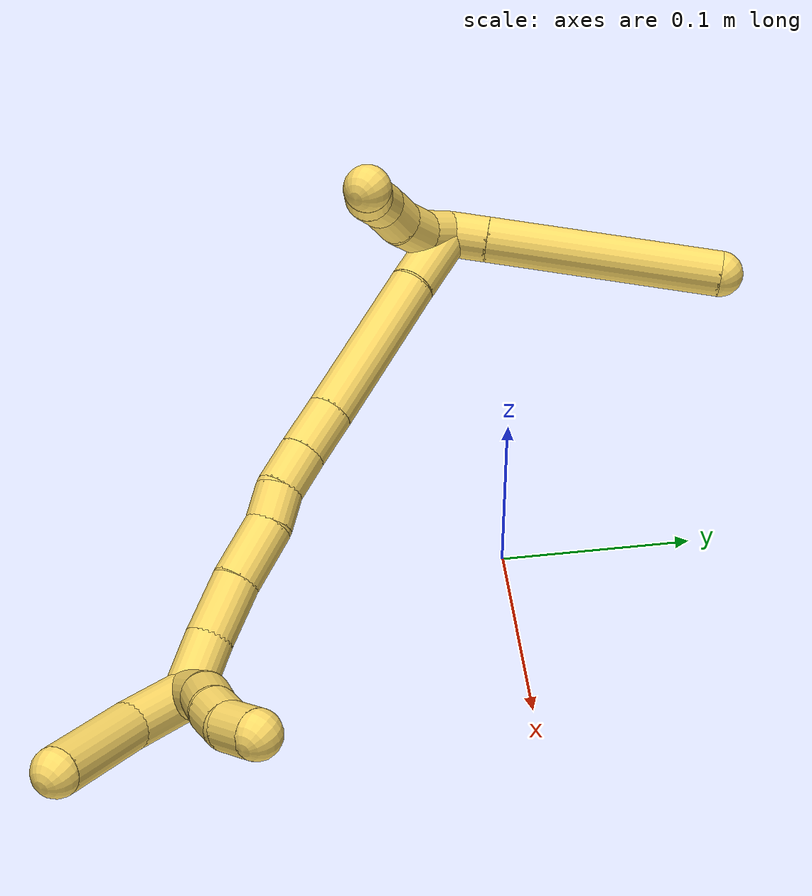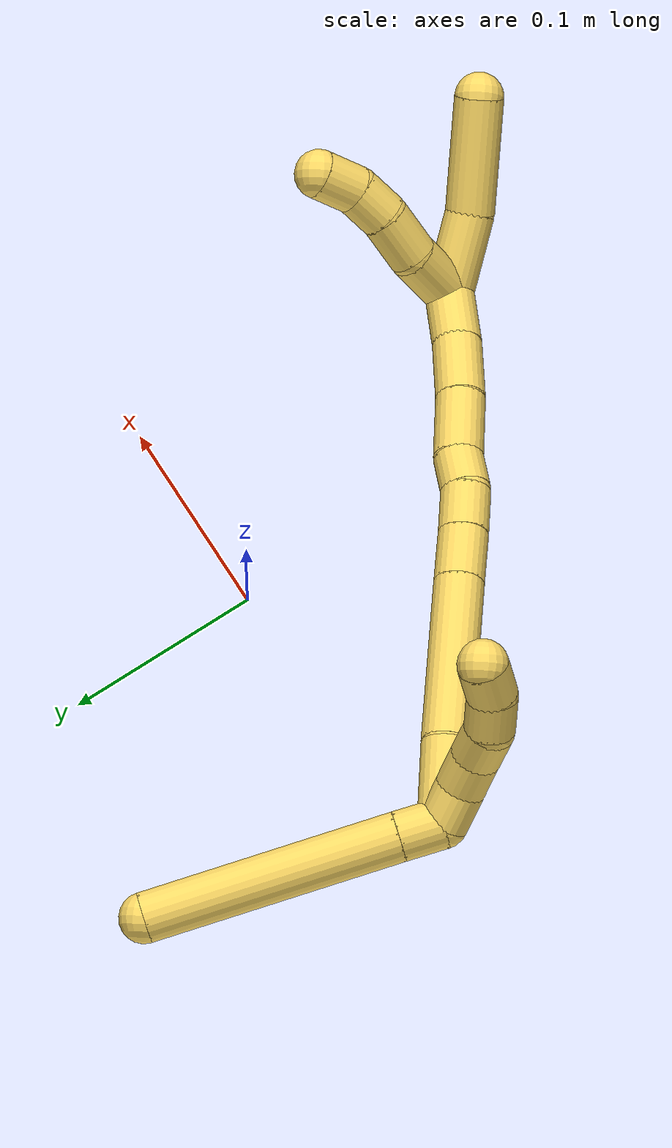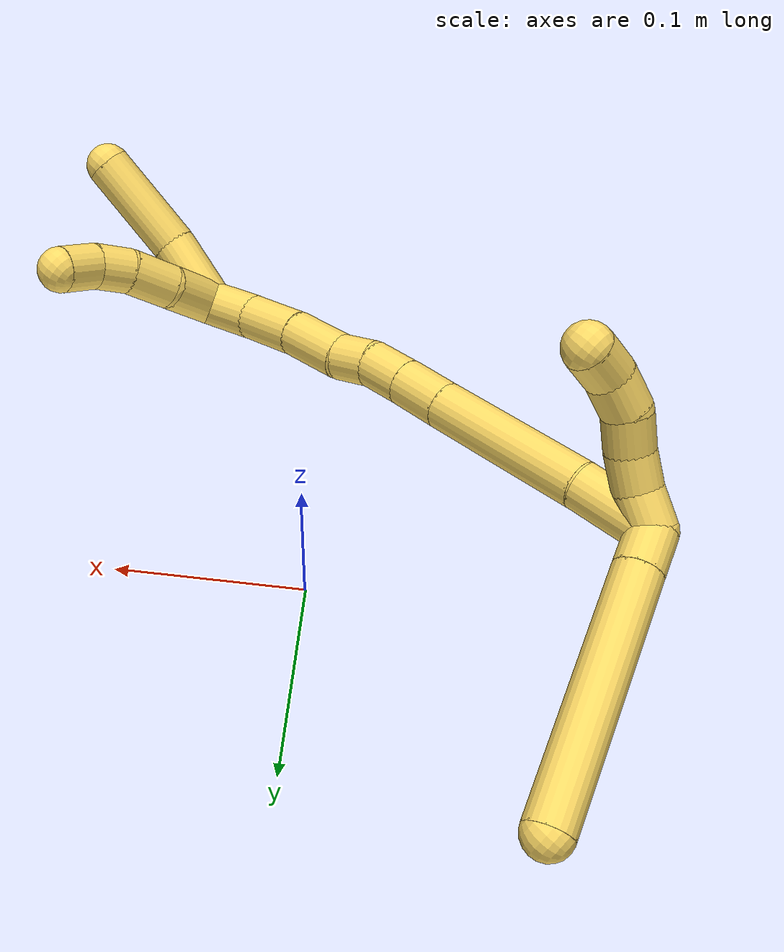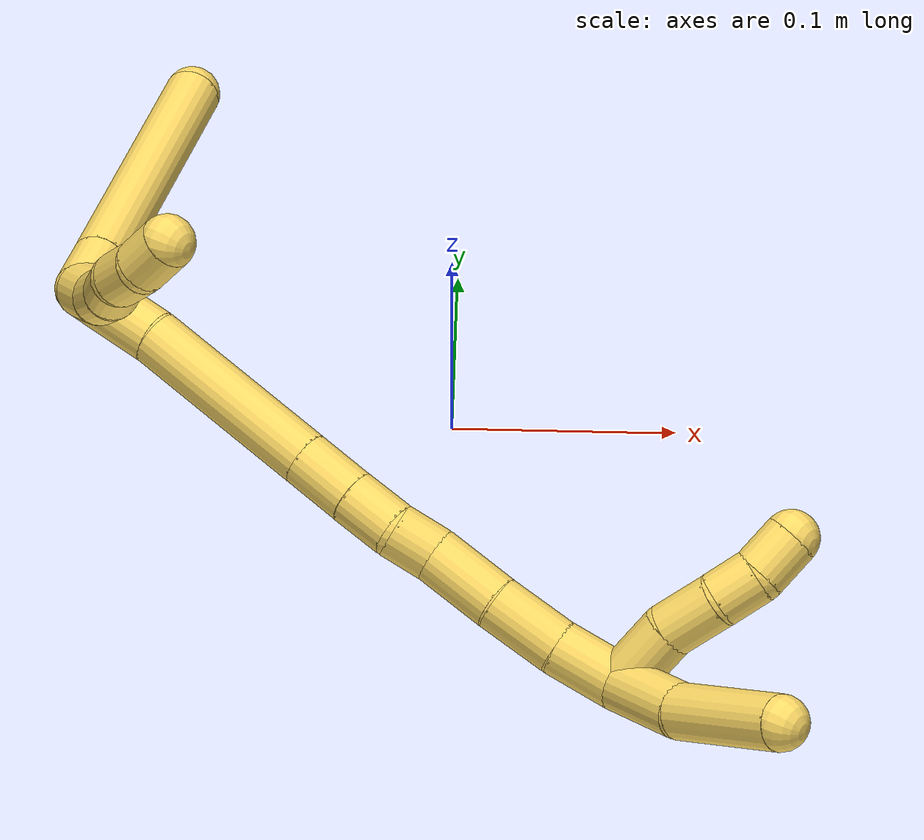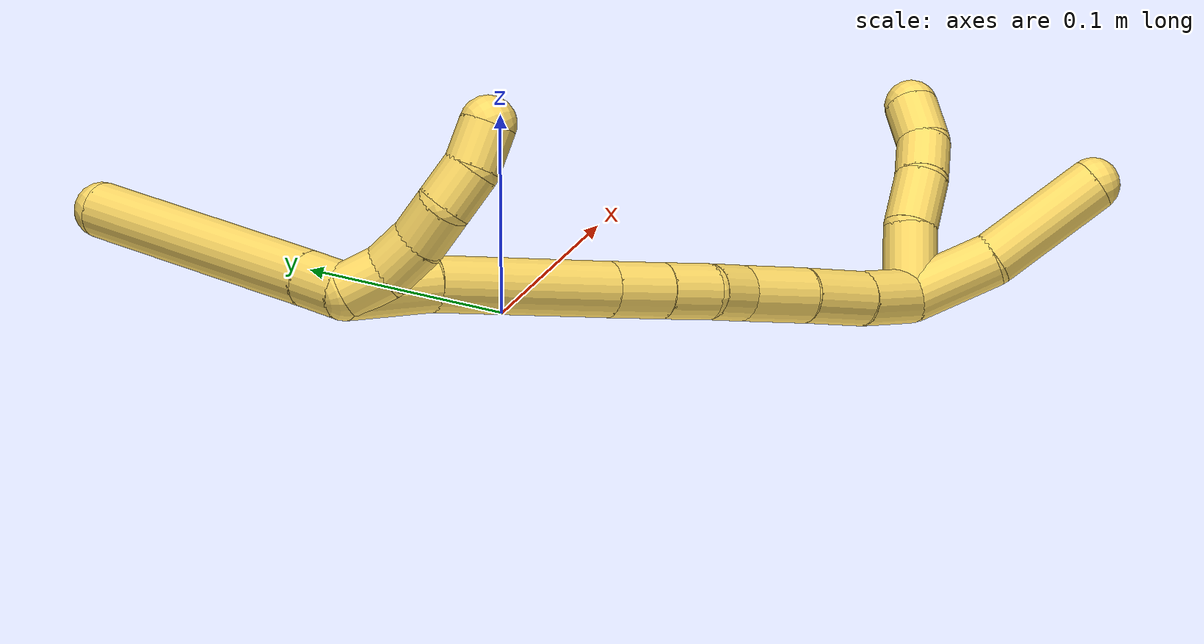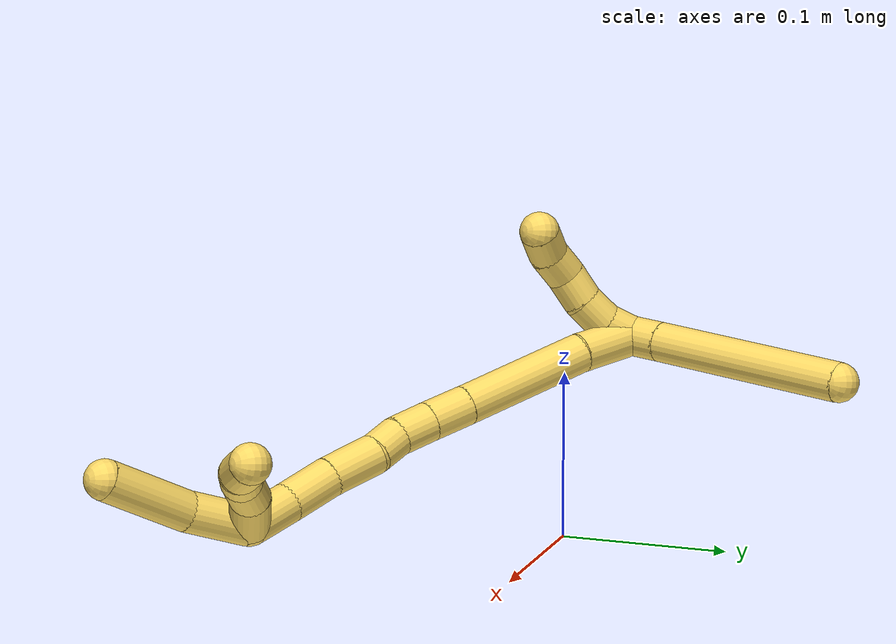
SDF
<sdf version="1.7">
 <world name="default">
  <model name="5">
   <static>0</static>
   <link name="5">
    <collision name="collision-cylinder-e_1_2_8">
     <pose>-0.000868 -0.010269 0.00385 1.2121 -0.078968 -0.054744</pose>
     <geometry><cylinder><radius>0.0125</radius><length>0.022002</length></cylinder></geometry>
     <surface>
      <friction><ode><mu>1.16</mu><mu2>1.16</mu2><slip1>0</slip1><slip2>0</slip2></ode></friction>
      <contact><ode><kp>1e+06</kp><kd>1</kd><max_vel>0</max_vel><min_depth>0.001</min_depth></ode></contact>
     </surface>
    </collision>
    <visual name="visual-cylinder-e_1_2_8">
     <pose>-0.000868 -0.010269 0.00385 1.2121 -0.078968 -0.054744</pose>
     <geometry><cylinder><radius>0.0125</radius><length>0.022002</length></cylinder></geometry>
     <material><ambient>1 0.858824 0.4 1</ambient></material>
    </visual>
    <collision name="collision-cylinder-e_2_8_6">
     <pose>-0.006152 -0.080071 0.030768 1.20112 -0.069067 -0.047318</pose>
     <geometry><cylinder><radius>0.0125</radius><length>0.127998</length></cylinder></geometry>
     <surface>
      <friction><ode><mu>1.16</mu><mu2>1.16</mu2><slip1>0</slip1><slip2>0</slip2></ode></friction>
      <contact><ode><kp>1e+06</kp><kd>1</kd><max_vel>0</max_vel><min_depth>0.001</min_depth></ode></contact>
     </surface>
    </collision>
    <visual name="visual-cylinder-e_2_8_6">
     <pose>-0.006152 -0.080071 0.030768 1.20112 -0.069067 -0.047318</pose>
     <geometry><cylinder><radius>0.0125</radius><length>0.127998</length></cylinder></geometry>
     <material><ambient>1 0.858824 0.4 1</ambient></material>
    </visual>
    <collision name="collision-cylinder-e_1_2_9">
     <pose>-0.003248 0.003998 -0.008571 -2.70511 -0.330752 1.29028</pose>
     <geometry><cylinder><radius>0.0125</radius><length>0.02</length></cylinder></geometry>
     <surface>
      <friction><ode><mu>1.16</mu><mu2>1.16</mu2><slip1>0</slip1><slip2>0</slip2></ode></friction>
      <contact><ode><kp>1e+06</kp><kd>1</kd><max_vel>0</max_vel><min_depth>0.001</min_depth></ode></contact>
     </surface>
    </collision>
    <visual name="visual-cylinder-e_1_2_9">
     <pose>-0.003248 0.003998 -0.008571 -2.70511 -0.330752 1.29028</pose>
     <geometry><cylinder><radius>0.0125</radius><length>0.02</length></cylinder></geometry>
     <material><ambient>1 0.858824 0.4 1</ambient></material>
    </visual>
    <collision name="collision-cylinder-e_2_9_10">
     <pose>-0.012425 0.011738 -0.024272 -2.65832 -0.634821 1.85434</pose>
     <geometry><cylinder><radius>0.0125</radius><length>0.02</length></cylinder></geometry>
     <surface>
      <friction><ode><mu>1.16</mu><mu2>1.16</mu2><slip1>0</slip1><slip2>0</slip2></ode></friction>
      <contact><ode><kp>1e+06</kp><kd>1</kd><max_vel>0</max_vel><min_depth>0.001</min_depth></ode></contact>
     </surface>
    </collision>
    <visual name="visual-cylinder-e_2_9_10">
     <pose>-0.012425 0.011738 -0.024272 -2.65832 -0.634821 1.85434</pose>
     <geometry><cylinder><radius>0.0125</radius><length>0.02</length></cylinder></geometry>
     <material><ambient>1 0.858824 0.4 1</ambient></material>
    </visual>
    <collision name="collision-cylinder-e_3_10_11">
     <pose>-0.02575 0.018969 -0.037159 -2.59679 -0.832241 2.0142</pose>
     <geometry><cylinder><radius>0.0125</radius><length>0.02</length></cylinder></geometry>
     <surface>
      <friction><ode><mu>1.16</mu><mu2>1.16</mu2><slip1>0</slip1><slip2>0</slip2></ode></friction>
      <contact><ode><kp>1e+06</kp><kd>1</kd><max_vel>0</max_vel><min_depth>0.001</min_depth></ode></contact>
     </surface>
    </collision>
    <visual name="visual-cylinder-e_3_10_11">
     <pose>-0.02575 0.018969 -0.037159 -2.59679 -0.832241 2.0142</pose>
     <geometry><cylinder><radius>0.0125</radius><length>0.02</length></cylinder></geometry>
     <material><ambient>1 0.858824 0.4 1</ambient></material>
    </visual>
    <collision name="collision-cylinder-e_4_11_12">
     <pose>-0.039702 0.023189 -0.050431 -3.04462 -0.715149 2.88331</pose>
     <geometry><cylinder><radius>0.0125</radius><length>0.02</length></cylinder></geometry>
     <surface>
      <friction><ode><mu>1.16</mu><mu2>1.16</mu2><slip1>0</slip1><slip2>0</slip2></ode></friction>
      <contact><ode><kp>1e+06</kp><kd>1</kd><max_vel>0</max_vel><min_depth>0.001</min_depth></ode></contact>
     </surface>
    </collision>
    <visual name="visual-cylinder-e_4_11_12">
     <pose>-0.039702 0.023189 -0.050431 -3.04462 -0.715149 2.88331</pose>
     <geometry><cylinder><radius>0.0125</radius><length>0.02</length></cylinder></geometry>
     <material><ambient>1 0.858824 0.4 1</ambient></material>
    </visual>
    <collision name="collision-cylinder-e_5_12_5">
     <pose>-0.053723 0.021871 -0.064277 2.82861 -0.842649 -2.46457</pose>
     <geometry><cylinder><radius>0.0125</radius><length>0.02</length></cylinder></geometry>
     <surface>
      <friction><ode><mu>1.16</mu><mu2>1.16</mu2><slip1>0</slip1><slip2>0</slip2></ode></friction>
      <contact><ode><kp>1e+06</kp><kd>1</kd><max_vel>0</max_vel><min_depth>0.001</min_depth></ode></contact>
     </surface>
    </collision>
    <visual name="visual-cylinder-e_5_12_5">
     <pose>-0.053723 0.021871 -0.064277 2.82861 -0.842649 -2.46457</pose>
     <geometry><cylinder><radius>0.0125</radius><length>0.02</length></cylinder></geometry>
     <material><ambient>1 0.858824 0.4 1</ambient></material>
    </visual>
    <collision name="collision-cylinder-e_1_2_13">
     <pose>0.005547 -0.000677 -0.019888 3.10756 0.271826 2.894</pose>
     <geometry><cylinder><radius>0.0125</radius><length>0.041317</length></cylinder></geometry>
     <surface>
      <friction><ode><mu>1.16</mu><mu2>1.16</mu2><slip1>0</slip1><slip2>0</slip2></ode></friction>
      <contact><ode><kp>1e+06</kp><kd>1</kd><max_vel>0</max_vel><min_depth>0.001</min_depth></ode></contact>
     </surface>
    </collision>
    <visual name="visual-cylinder-e_1_2_13">
     <pose>0.005547 -0.000677 -0.019888 3.10756 0.271826 2.894</pose>
     <geometry><cylinder><radius>0.0125</radius><length>0.041317</length></cylinder></geometry>
     <material><ambient>1 0.858824 0.4 1</ambient></material>
    </visual>
    <collision name="collision-cylinder-e_2_13_14">
     <pose>0.027646 -0.002041 -0.08065 3.12479 0.384733 3.05539</pose>
     <geometry><cylinder><radius>0.0125</radius><length>0.088206</length></cylinder></geometry>
     <surface>
      <friction><ode><mu>1.16</mu><mu2>1.16</mu2><slip1>0</slip1><slip2>0</slip2></ode></friction>
      <contact><ode><kp>1e+06</kp><kd>1</kd><max_vel>0</max_vel><min_depth>0.001</min_depth></ode></contact>
     </surface>
    </collision>
    <visual name="visual-cylinder-e_2_13_14">
     <pose>0.027646 -0.002041 -0.08065 3.12479 0.384733 3.05539</pose>
     <geometry><cylinder><radius>0.0125</radius><length>0.088206</length></cylinder></geometry>
     <material><ambient>1 0.858824 0.4 1</ambient></material>
    </visual>
    <collision name="collision-cylinder-e_3_14_15">
     <pose>0.049236 -0.002818 -0.134305 3.1345 0.375428 3.10426</pose>
     <geometry><cylinder><radius>0.0125</radius><length>0.027478</length></cylinder></geometry>
     <surface>
      <friction><ode><mu>1.16</mu><mu2>1.16</mu2><slip1>0</slip1><slip2>0</slip2></ode></friction>
      <contact><ode><kp>1e+06</kp><kd>1</kd><max_vel>0</max_vel><min_depth>0.001</min_depth></ode></contact>
     </surface>
    </collision>
    <visual name="visual-cylinder-e_3_14_15">
     <pose>0.049236 -0.002818 -0.134305 3.1345 0.375428 3.10426</pose>
     <geometry><cylinder><radius>0.0125</radius><length>0.027478</length></cylinder></geometry>
     <material><ambient>1 0.858824 0.4 1</ambient></material>
    </visual>
    <collision name="collision-cylinder-e_4_15_16">
     <pose>0.058716 -0.003302 -0.158267 3.10642 0.378013 2.95824</pose>
     <geometry><cylinder><radius>0.0125</radius><length>0.024073</length></cylinder></geometry>
     <surface>
      <friction><ode><mu>1.16</mu><mu2>1.16</mu2><slip1>0</slip1><slip2>0</slip2></ode></friction>
      <contact><ode><kp>1e+06</kp><kd>1</kd><max_vel>0</max_vel><min_depth>0.001</min_depth></ode></contact>
     </surface>
    </collision>
    <visual name="visual-cylinder-e_4_15_16">
     <pose>0.058716 -0.003302 -0.158267 3.10642 0.378013 2.95824</pose>
     <geometry><cylinder><radius>0.0125</radius><length>0.024073</length></cylinder></geometry>
     <material><ambient>1 0.858824 0.4 1</ambient></material>
    </visual>
    <collision name="collision-cylinder-e_5_16_17">
     <pose>0.06773 -0.006402 -0.17827 2.84398 0.459938 2.00245</pose>
     <geometry><cylinder><radius>0.0125</radius><length>0.0206</length></cylinder></geometry>
     <surface>
      <friction><ode><mu>1.16</mu><mu2>1.16</mu2><slip1>0</slip1><slip2>0</slip2></ode></friction>
      <contact><ode><kp>1e+06</kp><kd>1</kd><max_vel>0</max_vel><min_depth>0.001</min_depth></ode></contact>
     </surface>
    </collision>
    <visual name="visual-cylinder-e_5_16_17">
     <pose>0.06773 -0.006402 -0.17827 2.84398 0.459938 2.00245</pose>
     <geometry><cylinder><radius>0.0125</radius><length>0.0206</length></cylinder></geometry>
     <material><ambient>1 0.858824 0.4 1</ambient></material>
    </visual>
    <collision name="collision-cylinder-e_6_17_18">
     <pose>0.078991 -0.01003 -0.202894 3.08336 0.399853 2.85607</pose>
     <geometry><cylinder><radius>0.0125</radius><length>0.034363</length></cylinder></geometry>
     <surface>
      <friction><ode><mu>1.16</mu><mu2>1.16</mu2><slip1>0</slip1><slip2>0</slip2></ode></friction>
      <contact><ode><kp>1e+06</kp><kd>1</kd><max_vel>0</max_vel><min_depth>0.001</min_depth></ode></contact>
     </surface>
    </collision>
    <visual name="visual-cylinder-e_6_17_18">
     <pose>0.078991 -0.01003 -0.202894 3.08336 0.399853 2.85607</pose>
     <geometry><cylinder><radius>0.0125</radius><length>0.034363</length></cylinder></geometry>
     <material><ambient>1 0.858824 0.4 1</ambient></material>
    </visual>
    <collision name="collision-cylinder-e_7_18_19">
     <pose>0.092727 -0.013234 -0.233486 2.98847 0.440056 2.48073</pose>
     <geometry><cylinder><radius>0.0125</radius><length>0.033088</length></cylinder></geometry>
     <surface>
      <friction><ode><mu>1.16</mu><mu2>1.16</mu2><slip1>0</slip1><slip2>0</slip2></ode></friction>
      <contact><ode><kp>1e+06</kp><kd>1</kd><max_vel>0</max_vel><min_depth>0.001</min_depth></ode></contact>
     </surface>
    </collision>
    <visual name="visual-cylinder-e_7_18_19">
     <pose>0.092727 -0.013234 -0.233486 2.98847 0.440056 2.48073</pose>
     <geometry><cylinder><radius>0.0125</radius><length>0.033088</length></cylinder></geometry>
     <material><ambient>1 0.858824 0.4 1</ambient></material>
    </visual>
    <collision name="collision-cylinder-e_8_19_1">
     <pose>0.105351 -0.018756 -0.262304 2.91467 0.369566 2.04666</pose>
     <geometry><cylinder><radius>0.0125</radius><length>0.030875</length></cylinder></geometry>
     <surface>
      <friction><ode><mu>1.16</mu><mu2>1.16</mu2><slip1>0</slip1><slip2>0</slip2></ode></friction>
      <contact><ode><kp>1e+06</kp><kd>1</kd><max_vel>0</max_vel><min_depth>0.001</min_depth></ode></contact>
     </surface>
    </collision>
    <visual name="visual-cylinder-e_8_19_1">
     <pose>0.105351 -0.018756 -0.262304 2.91467 0.369566 2.04666</pose>
     <geometry><cylinder><radius>0.0125</radius><length>0.030875</length></cylinder></geometry>
     <material><ambient>1 0.858824 0.4 1</ambient></material>
    </visual>
    <collision name="collision-cylinder-e_1_1_20">
     <pose>0.107331 -0.017652 -0.296064 -2.92501 -0.176111 1.36409</pose>
     <geometry><cylinder><radius>0.0125</radius><length>0.041045</length></cylinder></geometry>
     <surface>
      <friction><ode><mu>1.16</mu><mu2>1.16</mu2><slip1>0</slip1><slip2>0</slip2></ode></friction>
      <contact><ode><kp>1e+06</kp><kd>1</kd><max_vel>0</max_vel><min_depth>0.001</min_depth></ode></contact>
     </surface>
    </collision>
    <visual name="visual-cylinder-e_1_1_20">
     <pose>0.107331 -0.017652 -0.296064 -2.92501 -0.176111 1.36409</pose>
     <geometry><cylinder><radius>0.0125</radius><length>0.041045</length></cylinder></geometry>
     <material><ambient>1 0.858824 0.4 1</ambient></material>
    </visual>
    <collision name="collision-cylinder-e_2_20_4">
     <pose>0.093994 -0.011854 -0.34358 -3.08922 -0.336824 2.83588</pose>
     <geometry><cylinder><radius>0.0125</radius><length>0.058955</length></cylinder></geometry>
     <surface>
      <friction><ode><mu>1.16</mu><mu2>1.16</mu2><slip1>0</slip1><slip2>0</slip2></ode></friction>
      <contact><ode><kp>1e+06</kp><kd>1</kd><max_vel>0</max_vel><min_depth>0.001</min_depth></ode></contact>
     </surface>
    </collision>
    <visual name="visual-cylinder-e_2_20_4">
     <pose>0.093994 -0.011854 -0.34358 -3.08922 -0.336824 2.83588</pose>
     <geometry><cylinder><radius>0.0125</radius><length>0.058955</length></cylinder></geometry>
     <material><ambient>1 0.858824 0.4 1</ambient></material>
    </visual>
    <collision name="collision-cylinder-e_1_1_21">
     <pose>0.099175 -0.030672 -0.283228 2.24238 -0.814565 -1.45895</pose>
     <geometry><cylinder><radius>0.0125</radius><length>0.032311</length></cylinder></geometry>
     <surface>
      <friction><ode><mu>1.16</mu><mu2>1.16</mu2><slip1>0</slip1><slip2>0</slip2></ode></friction>
      <contact><ode><kp>1e+06</kp><kd>1</kd><max_vel>0</max_vel><min_depth>0.001</min_depth></ode></contact>
     </surface>
    </collision>
    <visual name="visual-cylinder-e_1_1_21">
     <pose>0.099175 -0.030672 -0.283228 2.24238 -0.814565 -1.45895</pose>
     <geometry><cylinder><radius>0.0125</radius><length>0.032311</length></cylinder></geometry>
     <material><ambient>1 0.858824 0.4 1</ambient></material>
    </visual>
    <collision name="collision-cylinder-e_2_21_22">
     <pose>0.080123 -0.046266 -0.298306 2.43978 -0.598215 -1.40011</pose>
     <geometry><cylinder><radius>0.0125</radius><length>0.025925</length></cylinder></geometry>
     <surface>
      <friction><ode><mu>1.16</mu><mu2>1.16</mu2><slip1>0</slip1><slip2>0</slip2></ode></friction>
      <contact><ode><kp>1e+06</kp><kd>1</kd><max_vel>0</max_vel><min_depth>0.001</min_depth></ode></contact>
     </surface>
    </collision>
    <visual name="visual-cylinder-e_2_21_22">
     <pose>0.080123 -0.046266 -0.298306 2.43978 -0.598215 -1.40011</pose>
     <geometry><cylinder><radius>0.0125</radius><length>0.025925</length></cylinder></geometry>
     <material><ambient>1 0.858824 0.4 1</ambient></material>
    </visual>
    <collision name="collision-cylinder-e_3_22_23">
     <pose>0.068046 -0.060241 -0.311958 2.23015 -0.491082 -0.945277</pose>
     <geometry><cylinder><radius>0.0125</radius><length>0.020257</length></cylinder></geometry>
     <surface>
      <friction><ode><mu>1.16</mu><mu2>1.16</mu2><slip1>0</slip1><slip2>0</slip2></ode></friction>
      <contact><ode><kp>1e+06</kp><kd>1</kd><max_vel>0</max_vel><min_depth>0.001</min_depth></ode></contact>
     </surface>
    </collision>
    <visual name="visual-cylinder-e_3_22_23">
     <pose>0.068046 -0.060241 -0.311958 2.23015 -0.491082 -0.945277</pose>
     <geometry><cylinder><radius>0.0125</radius><length>0.020257</length></cylinder></geometry>
     <material><ambient>1 0.858824 0.4 1</ambient></material>
    </visual>
    <collision name="collision-cylinder-e_4_23_3">
     <pose>0.057575 -0.076038 -0.32005 1.86214 -0.558073 -0.735076</pose>
     <geometry><cylinder><radius>0.0125</radius><length>0.021507</length></cylinder></geometry>
     <surface>
      <friction><ode><mu>1.16</mu><mu2>1.16</mu2><slip1>0</slip1><slip2>0</slip2></ode></friction>
      <contact><ode><kp>1e+06</kp><kd>1</kd><max_vel>0</max_vel><min_depth>0.001</min_depth></ode></contact>
     </surface>
    </collision>
    <visual name="visual-cylinder-e_4_23_3">
     <pose>0.057575 -0.076038 -0.32005 1.86214 -0.558073 -0.735076</pose>
     <geometry><cylinder><radius>0.0125</radius><length>0.021507</length></cylinder></geometry>
     <material><ambient>1 0.858824 0.4 1</ambient></material>
    </visual>
    <collision name="collision-sphere-3">
     <pose>0.051881 -0.084775 -0.32267 0 -0 0</pose>
     <geometry><sphere><radius>0.0125</radius></sphere></geometry>
     <surface>
      <friction><ode><mu>1.16</mu><mu2>1.16</mu2><slip1>0</slip1><slip2>0</slip2></ode></friction>
      <contact><ode><kp>1e+06</kp><kd>1</kd><max_vel>0</max_vel><min_depth>0.001</min_depth></ode></contact>
     </surface>
    </collision>
    <visual name="visual-sphere-3">
     <pose>0.051881 -0.084775 -0.32267 0 -0 0</pose>
     <geometry><sphere><radius>0.0125</radius></sphere></geometry>
     <material><ambient>1 0.858824 0.4 1</ambient></material>
    </visual>
    <collision name="collision-sphere-23">
     <pose>0.06327 -0.0673 -0.31743 0 -0 0</pose>
     <geometry><sphere><radius>0.0125</radius></sphere></geometry>
     <surface>
      <friction><ode><mu>1.16</mu><mu2>1.16</mu2><slip1>0</slip1><slip2>0</slip2></ode></friction>
      <contact><ode><kp>1e+06</kp><kd>1</kd><max_vel>0</max_vel><min_depth>0.001</min_depth></ode></contact>
     </surface>
    </collision>
    <visual name="visual-sphere-23">
     <pose>0.06327 -0.0673 -0.31743 0 -0 0</pose>
     <geometry><sphere><radius>0.0125</radius></sphere></geometry>
     <material><ambient>1 0.858824 0.4 1</ambient></material>
    </visual>
    <collision name="collision-sphere-22">
     <pose>0.072823 -0.053181 -0.306486 0 -0 0</pose>
     <geometry><sphere><radius>0.0125</radius></sphere></geometry>
     <surface>
      <friction><ode><mu>1.16</mu><mu2>1.16</mu2><slip1>0</slip1><slip2>0</slip2></ode></friction>
      <contact><ode><kp>1e+06</kp><kd>1</kd><max_vel>0</max_vel><min_depth>0.001</min_depth></ode></contact>
     </surface>
    </collision>
    <visual name="visual-sphere-22">
     <pose>0.072823 -0.053181 -0.306486 0 -0 0</pose>
     <geometry><sphere><radius>0.0125</radius></sphere></geometry>
     <material><ambient>1 0.858824 0.4 1</ambient></material>
    </visual>
    <collision name="collision-sphere-21">
     <pose>0.087423 -0.03935 -0.290126 0 -0 0</pose>
     <geometry><sphere><radius>0.0125</radius></sphere></geometry>
     <surface>
      <friction><ode><mu>1.16</mu><mu2>1.16</mu2><slip1>0</slip1><slip2>0</slip2></ode></friction>
      <contact><ode><kp>1e+06</kp><kd>1</kd><max_vel>0</max_vel><min_depth>0.001</min_depth></ode></contact>
     </surface>
    </collision>
    <visual name="visual-sphere-21">
     <pose>0.087423 -0.03935 -0.290126 0 -0 0</pose>
     <geometry><sphere><radius>0.0125</radius></sphere></geometry>
     <material><ambient>1 0.858824 0.4 1</ambient></material>
    </visual>
    <collision name="collision-sphere-4">
     <pose>0.084252 -0.010397 -0.371363 0 -0 0</pose>
     <geometry><sphere><radius>0.0125</radius></sphere></geometry>
     <surface>
      <friction><ode><mu>1.16</mu><mu2>1.16</mu2><slip1>0</slip1><slip2>0</slip2></ode></friction>
      <contact><ode><kp>1e+06</kp><kd>1</kd><max_vel>0</max_vel><min_depth>0.001</min_depth></ode></contact>
     </surface>
    </collision>
    <visual name="visual-sphere-4">
     <pose>0.084252 -0.010397 -0.371363 0 -0 0</pose>
     <geometry><sphere><radius>0.0125</radius></sphere></geometry>
     <material><ambient>1 0.858824 0.4 1</ambient></material>
    </visual>
    <collision name="collision-sphere-20">
     <pose>0.103736 -0.01331 -0.315797 0 -0 0</pose>
     <geometry><sphere><radius>0.0125</radius></sphere></geometry>
     <surface>
      <friction><ode><mu>1.16</mu><mu2>1.16</mu2><slip1>0</slip1><slip2>0</slip2></ode></friction>
      <contact><ode><kp>1e+06</kp><kd>1</kd><max_vel>0</max_vel><min_depth>0.001</min_depth></ode></contact>
     </surface>
    </collision>
    <visual name="visual-sphere-20">
     <pose>0.103736 -0.01331 -0.315797 0 -0 0</pose>
     <geometry><sphere><radius>0.0125</radius></sphere></geometry>
     <material><ambient>1 0.858824 0.4 1</ambient></material>
    </visual>
    <collision name="collision-sphere-11">
     <pose>-0.033145 0.022458 -0.042917 0 -0 0</pose>
     <geometry><sphere><radius>0.0125</radius></sphere></geometry>
     <surface>
      <friction><ode><mu>1.16</mu><mu2>1.16</mu2><slip1>0</slip1><slip2>0</slip2></ode></friction>
      <contact><ode><kp>1e+06</kp><kd>1</kd><max_vel>0</max_vel><min_depth>0.001</min_depth></ode></contact>
     </surface>
    </collision>
    <visual name="visual-sphere-11">
     <pose>-0.033145 0.022458 -0.042917 0 -0 0</pose>
     <geometry><sphere><radius>0.0125</radius></sphere></geometry>
     <material><ambient>1 0.858824 0.4 1</ambient></material>
    </visual>
    <collision name="collision-sphere-10">
     <pose>-0.018356 0.01548 -0.031402 0 -0 0</pose>
     <geometry><sphere><radius>0.0125</radius></sphere></geometry>
     <surface>
      <friction><ode><mu>1.16</mu><mu2>1.16</mu2><slip1>0</slip1><slip2>0</slip2></ode></friction>
      <contact><ode><kp>1e+06</kp><kd>1</kd><max_vel>0</max_vel><min_depth>0.001</min_depth></ode></contact>
     </surface>
    </collision>
    <visual name="visual-sphere-10">
     <pose>-0.018356 0.01548 -0.031402 0 -0 0</pose>
     <geometry><sphere><radius>0.0125</radius></sphere></geometry>
     <material><ambient>1 0.858824 0.4 1</ambient></material>
    </visual>
    <collision name="collision-sphere-6">
     <pose>-0.010569 -0.139604 0.053837 0 -0 0</pose>
     <geometry><sphere><radius>0.0125</radius></sphere></geometry>
     <surface>
      <friction><ode><mu>1.16</mu><mu2>1.16</mu2><slip1>0</slip1><slip2>0</slip2></ode></friction>
      <contact><ode><kp>1e+06</kp><kd>1</kd><max_vel>0</max_vel><min_depth>0.001</min_depth></ode></contact>
     </surface>
    </collision>
    <visual name="visual-sphere-6">
     <pose>-0.010569 -0.139604 0.053837 0 -0 0</pose>
     <geometry><sphere><radius>0.0125</radius></sphere></geometry>
     <material><ambient>1 0.858824 0.4 1</ambient></material>
    </visual>
    <collision name="collision-sphere-9">
     <pose>-0.006495 0.007997 -0.017142 0 -0 0</pose>
     <geometry><sphere><radius>0.0125</radius></sphere></geometry>
     <surface>
      <friction><ode><mu>1.16</mu><mu2>1.16</mu2><slip1>0</slip1><slip2>0</slip2></ode></friction>
      <contact><ode><kp>1e+06</kp><kd>1</kd><max_vel>0</max_vel><min_depth>0.001</min_depth></ode></contact>
     </surface>
    </collision>
    <visual name="visual-sphere-9">
     <pose>-0.006495 0.007997 -0.017142 0 -0 0</pose>
     <geometry><sphere><radius>0.0125</radius></sphere></geometry>
     <material><ambient>1 0.858824 0.4 1</ambient></material>
    </visual>
    <collision name="collision-sphere-2">
     <geometry><sphere><radius>0.0125</radius></sphere></geometry>
     <surface>
      <friction><ode><mu>1.16</mu><mu2>1.16</mu2><slip1>0</slip1><slip2>0</slip2></ode></friction>
      <contact><ode><kp>1e+06</kp><kd>1</kd><max_vel>0</max_vel><min_depth>0.001</min_depth></ode></contact>
     </surface>
    </collision>
    <visual name="visual-sphere-2">
     <geometry><sphere><radius>0.0125</radius></sphere></geometry>
     <material><ambient>1 0.858824 0.4 1</ambient></material>
    </visual>
    <collision name="collision-sphere-19">
     <pose>0.099774 -0.015517 -0.248278 0 -0 0</pose>
     <geometry><sphere><radius>0.0125</radius></sphere></geometry>
     <surface>
      <friction><ode><mu>1.16</mu><mu2>1.16</mu2><slip1>0</slip1><slip2>0</slip2></ode></friction>
      <contact><ode><kp>1e+06</kp><kd>1</kd><max_vel>0</max_vel><min_depth>0.001</min_depth></ode></contact>
     </surface>
    </collision>
    <visual name="visual-sphere-19">
     <pose>0.099774 -0.015517 -0.248278 0 -0 0</pose>
     <geometry><sphere><radius>0.0125</radius></sphere></geometry>
     <material><ambient>1 0.858824 0.4 1</ambient></material>
    </visual>
    <collision name="collision-sphere-8">
     <pose>-0.001736 -0.020537 0.0077 0 -0 0</pose>
     <geometry><sphere><radius>0.0125</radius></sphere></geometry>
     <surface>
      <friction><ode><mu>1.16</mu><mu2>1.16</mu2><slip1>0</slip1><slip2>0</slip2></ode></friction>
      <contact><ode><kp>1e+06</kp><kd>1</kd><max_vel>0</max_vel><min_depth>0.001</min_depth></ode></contact>
     </surface>
    </collision>
    <visual name="visual-sphere-8">
     <pose>-0.001736 -0.020537 0.0077 0 -0 0</pose>
     <geometry><sphere><radius>0.0125</radius></sphere></geometry>
     <material><ambient>1 0.858824 0.4 1</ambient></material>
    </visual>
    <collision name="collision-sphere-12">
     <pose>-0.046259 0.02392 -0.057946 0 -0 0</pose>
     <geometry><sphere><radius>0.0125</radius></sphere></geometry>
     <surface>
      <friction><ode><mu>1.16</mu><mu2>1.16</mu2><slip1>0</slip1><slip2>0</slip2></ode></friction>
      <contact><ode><kp>1e+06</kp><kd>1</kd><max_vel>0</max_vel><min_depth>0.001</min_depth></ode></contact>
     </surface>
    </collision>
    <visual name="visual-sphere-12">
     <pose>-0.046259 0.02392 -0.057946 0 -0 0</pose>
     <geometry><sphere><radius>0.0125</radius></sphere></geometry>
     <material><ambient>1 0.858824 0.4 1</ambient></material>
    </visual>
    <collision name="collision-sphere-5">
     <pose>-0.061187 0.019822 -0.070609 0 -0 0</pose>
     <geometry><sphere><radius>0.0125</radius></sphere></geometry>
     <surface>
      <friction><ode><mu>1.16</mu><mu2>1.16</mu2><slip1>0</slip1><slip2>0</slip2></ode></friction>
      <contact><ode><kp>1e+06</kp><kd>1</kd><max_vel>0</max_vel><min_depth>0.001</min_depth></ode></contact>
     </surface>
    </collision>
    <visual name="visual-sphere-5">
     <pose>-0.061187 0.019822 -0.070609 0 -0 0</pose>
     <geometry><sphere><radius>0.0125</radius></sphere></geometry>
     <material><ambient>1 0.858824 0.4 1</ambient></material>
    </visual>
    <collision name="collision-sphere-13">
     <pose>0.011093 -0.001354 -0.039777 0 -0 0</pose>
     <geometry><sphere><radius>0.0125</radius></sphere></geometry>
     <surface>
      <friction><ode><mu>1.16</mu><mu2>1.16</mu2><slip1>0</slip1><slip2>0</slip2></ode></friction>
      <contact><ode><kp>1e+06</kp><kd>1</kd><max_vel>0</max_vel><min_depth>0.001</min_depth></ode></contact>
     </surface>
    </collision>
    <visual name="visual-sphere-13">
     <pose>0.011093 -0.001354 -0.039777 0 -0 0</pose>
     <geometry><sphere><radius>0.0125</radius></sphere></geometry>
     <material><ambient>1 0.858824 0.4 1</ambient></material>
    </visual>
    <collision name="collision-sphere-14">
     <pose>0.044198 -0.002728 -0.121523 0 -0 0</pose>
     <geometry><sphere><radius>0.0125</radius></sphere></geometry>
     <surface>
      <friction><ode><mu>1.16</mu><mu2>1.16</mu2><slip1>0</slip1><slip2>0</slip2></ode></friction>
      <contact><ode><kp>1e+06</kp><kd>1</kd><max_vel>0</max_vel><min_depth>0.001</min_depth></ode></contact>
     </surface>
    </collision>
    <visual name="visual-sphere-14">
     <pose>0.044198 -0.002728 -0.121523 0 -0 0</pose>
     <geometry><sphere><radius>0.0125</radius></sphere></geometry>
     <material><ambient>1 0.858824 0.4 1</ambient></material>
    </visual>
    <collision name="collision-sphere-15">
     <pose>0.054273 -0.002909 -0.147087 0 -0 0</pose>
     <geometry><sphere><radius>0.0125</radius></sphere></geometry>
     <surface>
      <friction><ode><mu>1.16</mu><mu2>1.16</mu2><slip1>0</slip1><slip2>0</slip2></ode></friction>
      <contact><ode><kp>1e+06</kp><kd>1</kd><max_vel>0</max_vel><min_depth>0.001</min_depth></ode></contact>
     </surface>
    </collision>
    <visual name="visual-sphere-15">
     <pose>0.054273 -0.002909 -0.147087 0 -0 0</pose>
     <geometry><sphere><radius>0.0125</radius></sphere></geometry>
     <material><ambient>1 0.858824 0.4 1</ambient></material>
    </visual>
    <collision name="collision-sphere-16">
     <pose>0.063158 -0.003696 -0.169446 0 -0 0</pose>
     <geometry><sphere><radius>0.0125</radius></sphere></geometry>
     <surface>
      <friction><ode><mu>1.16</mu><mu2>1.16</mu2><slip1>0</slip1><slip2>0</slip2></ode></friction>
      <contact><ode><kp>1e+06</kp><kd>1</kd><max_vel>0</max_vel><min_depth>0.001</min_depth></ode></contact>
     </surface>
    </collision>
    <visual name="visual-sphere-16">
     <pose>0.063158 -0.003696 -0.169446 0 -0 0</pose>
     <geometry><sphere><radius>0.0125</radius></sphere></geometry>
     <material><ambient>1 0.858824 0.4 1</ambient></material>
    </visual>
    <collision name="collision-sphere-17">
     <pose>0.072302 -0.009109 -0.187094 0 -0 0</pose>
     <geometry><sphere><radius>0.0125</radius></sphere></geometry>
     <surface>
      <friction><ode><mu>1.16</mu><mu2>1.16</mu2><slip1>0</slip1><slip2>0</slip2></ode></friction>
      <contact><ode><kp>1e+06</kp><kd>1</kd><max_vel>0</max_vel><min_depth>0.001</min_depth></ode></contact>
     </surface>
    </collision>
    <visual name="visual-sphere-17">
     <pose>0.072302 -0.009109 -0.187094 0 -0 0</pose>
     <geometry><sphere><radius>0.0125</radius></sphere></geometry>
     <material><ambient>1 0.858824 0.4 1</ambient></material>
    </visual>
    <collision name="collision-sphere-18">
     <pose>0.085679 -0.010951 -0.218693 0 -0 0</pose>
     <geometry><sphere><radius>0.0125</radius></sphere></geometry>
     <surface>
      <friction><ode><mu>1.16</mu><mu2>1.16</mu2><slip1>0</slip1><slip2>0</slip2></ode></friction>
      <contact><ode><kp>1e+06</kp><kd>1</kd><max_vel>0</max_vel><min_depth>0.001</min_depth></ode></contact>
     </surface>
    </collision>
    <visual name="visual-sphere-18">
     <pose>0.085679 -0.010951 -0.218693 0 -0 0</pose>
     <geometry><sphere><radius>0.0125</radius></sphere></geometry>
     <material><ambient>1 0.858824 0.4 1</ambient></material>
    </visual>
    <collision name="collision-sphere-1">
     <pose>0.110927 -0.021994 -0.276331 0 -0 0</pose>
     <geometry><sphere><radius>0.0125</radius></sphere></geometry>
     <surface>
      <friction><ode><mu>1.16</mu><mu2>1.16</mu2><slip1>0</slip1><slip2>0</slip2></ode></friction>
      <contact><ode><kp>1e+06</kp><kd>1</kd><max_vel>0</max_vel><min_depth>0.001</min_depth></ode></contact>
     </surface>
    </collision>
    <visual name="visual-sphere-1">
     <pose>0.110927 -0.021994 -0.276331 0 -0 0</pose>
     <geometry><sphere><radius>0.0125</radius></sphere></geometry>
     <material><ambient>1 0.858824 0.4 1</ambient></material>
    </visual>
    <inertial>
     <pose>0.040275 -0.022943 -0.138761 0 -0 0</pose>
     <mass>0.75</mass>
     <inertia><ixx>0.0001</ixx><ixy>0</ixy><ixz>0</ixz><iyy>0.000174</iyy><iyz>0</iyz><izz>0.000138</izz></inertia>
    </inertial>
   </link>
   <pose>-0.162202 -0.007796 0.086949 2.51654 1.40908 -1.26551</pose>
  </model>
 </world>
</sdf>
